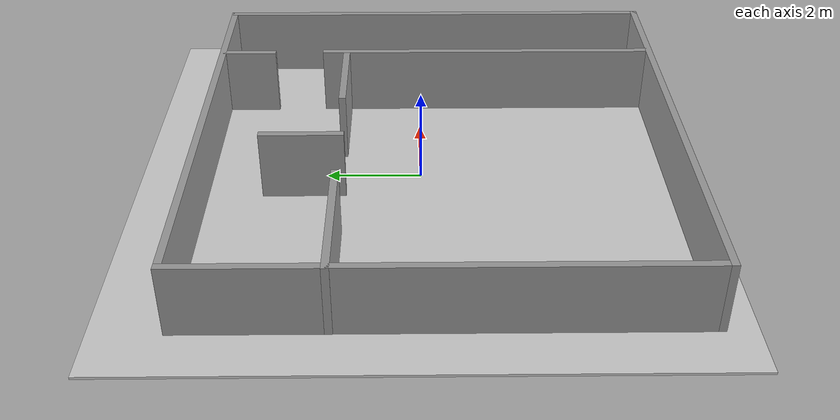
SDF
<?xml version='1.0'?>
<sdf version='1.6'>
  <world name='room3_world'>
    <!-- ── Core Gazebo Harmonic system plugins ───────────────────────────── -->
    <plugin filename="gz-sim-physics-system"
            name="gz::sim::systems::Physics"/>
    <plugin filename="gz-sim-user-commands-system"
            name="gz::sim::systems::UserCommands"/>
    <plugin filename="gz-sim-scene-broadcaster-system"
            name="gz::sim::systems::SceneBroadcaster"/>
    <!-- Sensors plugin: required for LiDAR (gpu_lidar) -->
    <plugin filename="gz-sim-sensors-system"
            name="gz::sim::systems::Sensors">
      <render_engine>ogre2</render_engine>
    </plugin>
    <plugin filename="gz-sim-contact-system"
            name="gz::sim::systems::Contact"/>

    <!-- ── Physics ───────────────────────────────────────────────────────── -->
    <physics name="1ms" type="ignored">
      <max_step_size>0.001</max_step_size>
      <real_time_factor>1.0</real_time_factor>
    </physics>

    <!-- ── Gravity ───────────────────────────────────────────────────────── -->
    <gravity>0 0 -9.8</gravity>

    <!-- ── Lighting ──────────────────────────────────────────────────────── -->
    <light type="directional" name="sun">
      <cast_shadows>true</cast_shadows>
      <pose>0 0 10 0 0 0</pose>
      <diffuse>0.8 0.8 0.8 1</diffuse>
      <specular>0.2 0.2 0.2 1</specular>
      <attenuation>
        <range>1000</range>
        <constant>0.9</constant>
        <linear>0.01</linear>
        <quadratic>0.001</quadratic>
      </attenuation>
      <direction>-0.5 0.1 -0.9</direction>
    </light>

    <model name='workshop_floor'>
      <static>1</static>
      <link name='floor_link'>
        <collision name='floor_collision'>
          <geometry>
            <box>
              <size>12 12 0.05</size>
            </box>
          </geometry>
          <pose frame=''>0 0 -0.025 0 0 0</pose>
        </collision>
        <visual name='floor_visual'>
          <geometry>
            <box>
              <size>12 12 0.05</size>
            </box>
          </geometry>
          <pose frame=''>0 0 -0.025 0 0 0</pose>
          <material>
            <ambient>0.7 0.7 0.7 1</ambient>
            <diffuse>0.8 0.8 0.8 1</diffuse>
            <specular>0.05 0.05 0.05 1</specular>
          </material>
        </visual>
      </link>
    </model>

    <model name='room3'>
      <pose frame=''>0.014 -0.389 0 0 -0 0</pose>
      <link name='Wall_0'>
        <collision name='Wall_0_Collision'>
          <geometry>
            <box>
              <size>10 0.15 1.5</size>
            </box>
          </geometry>
          <pose frame=''>0 0 0.75 0 -0 0</pose>
        </collision>
        <visual name='Wall_0_Visual'>
          <pose frame=''>0 0 0.75 0 -0 0</pose>
          <geometry>
            <box>
              <size>10 0.15 1.5</size>
            </box>
          </geometry>
          <material>
            <script>
              <uri>file://media/materials/scripts/gazebo.material</uri>
              <name>Gazebo/Grey</name>
            </script>
            <ambient>1 1 1 1</ambient>
          </material>
          <meta>
            <layer>0</layer>
          </meta>
        </visual>
        <pose frame=''>0.001 4.925 0 0 -0 0</pose>
      </link>
      <link name='Wall_1'>
        <collision name='Wall_1_Collision'>
          <geometry>
            <box>
              <size>10 0.15 1.5</size>
            </box>
          </geometry>
          <pose frame=''>0 0 0.75 0 -0 0</pose>
        </collision>
        <visual name='Wall_1_Visual'>
          <pose frame=''>0 0 0.75 0 -0 0</pose>
          <geometry>
            <box>
              <size>10 0.15 1.5</size>
            </box>
          </geometry>
          <material>
            <script>
              <uri>file://media/materials/scripts/gazebo.material</uri>
              <name>Gazebo/Grey</name>
            </script>
            <ambient>1 1 1 1</ambient>
          </material>
          <meta>
            <layer>0</layer>
          </meta>
        </visual>
        <pose frame=''>4.926 -0 0 0 -0 -1.5708</pose>
      </link>
      <link name='Wall_11'>
        <collision name='Wall_11_Collision'>
          <geometry>
            <box>
              <size>3 0.15 1.5</size>
            </box>
          </geometry>
          <pose frame=''>0 0 0.75 0 -0 0</pose>
        </collision>
        <visual name='Wall_11_Visual'>
          <pose frame=''>0 0 0.75 0 -0 0</pose>
          <geometry>
            <box>
              <size>3 0.15 1.5</size>
            </box>
          </geometry>
          <material>
            <script>
              <uri>file://media/materials/scripts/gazebo.material</uri>
              <name>Gazebo/Grey</name>
            </script>
            <ambient>1 1 1 1</ambient>
          </material>
          <meta>
            <layer>0</layer>
          </meta>
        </visual>
        <pose frame=''>-3.501 2.069 0 0 -0 0</pose>
      </link>
      <link name='Wall_2'>
        <collision name='Wall_2_Collision'>
          <geometry>
            <box>
              <size>10 0.15 1.5</size>
            </box>
          </geometry>
          <pose frame=''>0 0 0.75 0 -0 0</pose>
        </collision>
        <visual name='Wall_2_Visual'>
          <pose frame=''>0 0 0.75 0 -0 0</pose>
          <geometry>
            <box>
              <size>10 0.15 1.5</size>
            </box>
          </geometry>
          <material>
            <script>
              <uri>file://media/materials/scripts/gazebo.material</uri>
              <name>Gazebo/Grey</name>
            </script>
            <ambient>1 1 1 1</ambient>
          </material>
          <meta>
            <layer>0</layer>
          </meta>
        </visual>
        <pose frame=''>0.001 -4.925 0 0 -0 3.14159</pose>
      </link>
      <link name='Wall_23'>
        <collision name='Wall_23_Collision'>
          <geometry>
            <box>
              <size>7.5 0.15 1.5</size>
            </box>
          </geometry>
          <pose frame=''>0 0 0.75 0 -0 0</pose>
        </collision>
        <visual name='Wall_23_Visual'>
          <pose frame=''>0 0 0.75 0 -0 0</pose>
          <geometry>
            <box>
              <size>7.5 0.15 1.5</size>
            </box>
          </geometry>
          <material>
            <script>
              <uri>file://media/materials/scripts/gazebo.material</uri>
              <name>Gazebo/Grey</name>
            </script>
            <ambient>1 1 1 1</ambient>
          </material>
          <meta>
            <layer>0</layer>
          </meta>
        </visual>
        <pose frame=''>2.919 -1.13 0 0 -0 -1.5708</pose>
      </link>
      <link name='Wall_25'>
        <collision name='Wall_25_Collision'>
          <geometry>
            <box>
              <size>1.25 0.15 1.5</size>
            </box>
          </geometry>
          <pose frame=''>0 0 0.75 0 -0 0</pose>
        </collision>
        <visual name='Wall_25_Visual'>
          <pose frame=''>0 0 0.75 0 -0 0</pose>
          <geometry>
            <box>
              <size>1.25 0.15 1.5</size>
            </box>
          </geometry>
          <material>
            <script>
              <uri>file://media/materials/scripts/gazebo.material</uri>
              <name>Gazebo/Grey</name>
            </script>
            <ambient>1 1 1 1</ambient>
          </material>
          <meta>
            <layer>0</layer>
          </meta>
        </visual>
        <pose frame=''>2.892 4.336 0 0 -0 -1.5708</pose>
      </link>
      <link name='Wall_29'>
        <collision name='Wall_29_Collision'>
          <geometry>
            <box>
              <size>2.25 0.15 1.5</size>
            </box>
          </geometry>
          <pose frame=''>0 0 0.75 0 -0 0</pose>
        </collision>
        <visual name='Wall_29_Visual'>
          <pose frame=''>0 0 0.75 0 -0 0</pose>
          <geometry>
            <box>
              <size>2.25 0.15 1.5</size>
            </box>
          </geometry>
          <material>
            <script>
              <uri>file://media/materials/scripts/gazebo.material</uri>
              <name>Gazebo/Grey</name>
            </script>
            <ambient>1 1 1 1</ambient>
          </material>
          <meta>
            <layer>0</layer>
          </meta>
        </visual>
        <pose frame=''>1.875 2.069 0 0 -0 0</pose>
      </link>
      <link name='Wall_3'>
        <collision name='Wall_3_Collision'>
          <geometry>
            <box>
              <size>10 0.15 1.5</size>
            </box>
          </geometry>
          <pose frame=''>0 0 0.75 0 -0 0</pose>
        </collision>
        <visual name='Wall_3_Visual'>
          <pose frame=''>0 0 0.75 0 -0 0</pose>
          <geometry>
            <box>
              <size>10 0.15 1.5</size>
            </box>
          </geometry>
          <material>
            <script>
              <uri>file://media/materials/scripts/gazebo.material</uri>
              <name>Gazebo/Grey</name>
            </script>
            <ambient>1 1 1 1</ambient>
          </material>
          <meta>
            <layer>0</layer>
          </meta>
        </visual>
        <pose frame=''>-4.924 -0 0 0 -0 1.5708</pose>
      </link>
      <link name='Wall_31'>
        <collision name='Wall_31_Collision'>
          <geometry>
            <box>
              <size>1.75 0.15 1.5</size>
            </box>
          </geometry>
          <pose frame=''>0 0 0.75 0 -0 0</pose>
        </collision>
        <visual name='Wall_31_Visual'>
          <pose frame=''>0 0 0.75 0 -0 0</pose>
          <geometry>
            <box>
              <size>1.75 0.15 1.5</size>
            </box>
          </geometry>
          <material>
            <script>
              <uri>file://media/materials/scripts/gazebo.material</uri>
              <name>Gazebo/Grey</name>
            </script>
            <ambient>1 1 1 1</ambient>
          </material>
          <meta>
            <layer>0</layer>
          </meta>
        </visual>
        <pose frame=''>-0.678 2.836 0 0 -0 -1.5708</pose>
      </link>
      <static>1</static>
    </model>

  </world>
</sdf>
